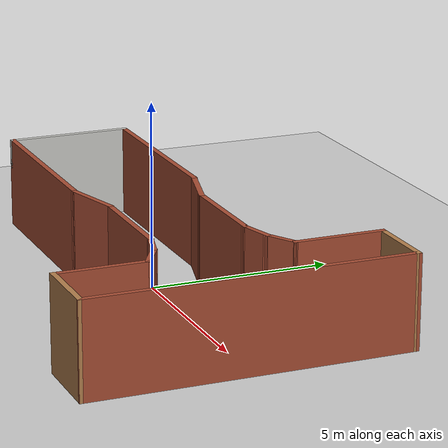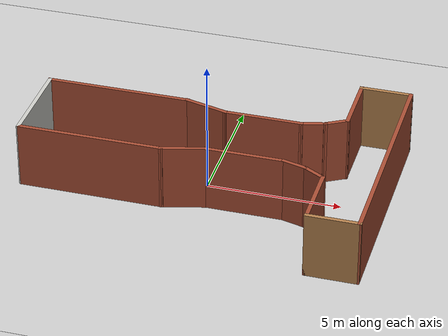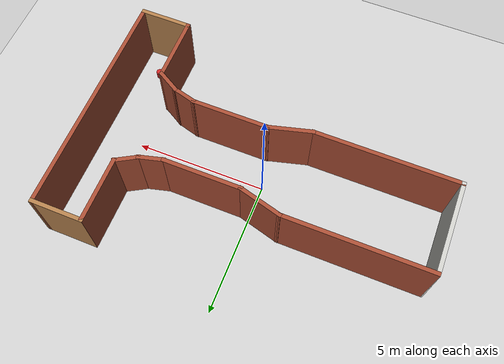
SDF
<?xml version="1.0" ?>
<sdf version="1.4">
  <world name="default">
    <include>
      <uri>model://ground_plane</uri>
    </include>
    <include>
      <uri>model://sun</uri>
    </include>

    <!-- Only require one ROS interface plugin per world, as any other plugin can connect a Gazebo
        topic to a ROS topic (or vise versa). -->
    <plugin name="ros_interface_plugin" filename="librotors_gazebo_ros_interface_plugin.so"></plugin>
    <!-- Rl Interface Plugin -->
    <plugin name="ros_rl_interface_plugin" filename="librl_gazebo_interface_plugin.so"></plugin>

    <spherical_coordinates>
      <surface_model>EARTH_WGS84</surface_model>
      <latitude_deg>47.3667</latitude_deg>
      <longitude_deg>8.5500</longitude_deg>
      <elevation>500.0</elevation>
      <heading_deg>0</heading_deg>
    </spherical_coordinates>
    <physics type='ode'>
      <ode>
        <solver>
          <type>quick</type>
          <iters>1000</iters>
          <sor>1.3</sor>
        </solver>
        <constraints>
          <cfm>0</cfm>
          <erp>0.2</erp>
          <contact_max_correcting_vel>100</contact_max_correcting_vel>
          <contact_surface_layer>0.001</contact_surface_layer>
        </constraints>
      </ode>
      <max_step_size>0.01</max_step_size>
      <real_time_factor>1</real_time_factor>
      <real_time_update_rate>100</real_time_update_rate>
      <gravity>0 0 -9.8</gravity>
    </physics>

    <include>
      <pose>5.7 -3.2 0 0 0 0</pose>
      <uri>model://cylinder</uri>
    </include>

    <include>
      <pose>0 0 0 0 0 0</pose>
      <uri>model://maze_3</uri>
    </include>

  </world>
</sdf>

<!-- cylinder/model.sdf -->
<sdf version='1.5'>
  <model name='cylinder'>
    <link name='link'>
      <pose frame=''>0 0 0.15 0 -0 0</pose>
      <inertial>
        <mass>1</mass>
        <inertia>
          <ixx>0.145833</ixx>
          <ixy>0</ixy>
          <ixz>0</ixz>
          <iyy>0.145833</iyy>
          <iyz>0</iyz>
          <izz>0.125</izz>
        </inertia>
        <pose frame=''>0 0 0 0 -0 0</pose>
      </inertial>
      <self_collide>0</self_collide>
      <kinematic>0</kinematic>
      <gravity>1</gravity>
      <visual name='visual'>
        <geometry>
          <cylinder>
            <radius>0.125</radius>
            <length>0.3</length>
          </cylinder>
        </geometry>
        <material>
          <script>
            <name>Gazebo/Red</name>
            <uri>file://media/materials/scripts/gazebo.material</uri>
          </script>
          <ambient>1 0 0 1</ambient>
          <diffuse>1 0 0 1</diffuse>
          <specular>0.01 0 0 1</specular>
          <emissive>0 0 0 1</emissive>
          <shader type='vertex'>
            <normal_map>__default__</normal_map>
          </shader>
        </material>
        <pose frame=''>0 0 0 0 -0 0</pose>
        <cast_shadows>1</cast_shadows>
        <transparency>0.0</transparency>
      </visual>
    </link>
    <static>1</static>
    <allow_auto_disable>1</allow_auto_disable>
  </model>
</sdf>

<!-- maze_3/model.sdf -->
<sdf version='1.5'>
  <model name='maze_3'>
    <pose frame=''>3.84212 -3.565 0 0 -0 0</pose>
    <link name='Wall_0'>
      <collision name='Wall_0_Collision'>
        <geometry>
          <box>
            <size>3.5 0.15 2.5</size>
          </box>
        </geometry>
        <pose frame=''>0 0 1.25 0 -0 0</pose>
      </collision>
      <visual name='Wall_0_Visual'>
        <pose frame=''>0 0 1.25 0 -0 0</pose>
        <geometry>
          <box>
            <size>3.5 0.15 2.5</size>
          </box>
        </geometry>
        <material>
          <script>
            <uri>file://media/materials/scripts/gazebo.material</uri>
            <name>Gazebo/CeilingTiled</name>
          </script>
          <ambient>1 1 1 1</ambient>
        </material>
      </visual>
      <pose frame=''>-6.58212 0 0 0 0 -1.5708</pose>
    </link>
    <link name='Wall_1'>
      <collision name='Wall_1_Collision'>
        <geometry>
          <box>
            <size>5.5 0.15 2.5</size>
          </box>
        </geometry>
        <pose frame=''>0 0 1.25 0 -0 0</pose>
      </collision>
      <visual name='Wall_1_Visual'>
        <pose frame=''>0 0 1.25 0 -0 0</pose>
        <geometry>
          <box>
            <size>5.5 0.15 2.5</size>
          </box>
        </geometry>
        <material>
          <script>
            <uri>file://media/materials/scripts/gazebo.material</uri>
            <name>Gazebo/Bricks</name>
          </script>
          <ambient>1 1 1 1</ambient>
        </material>
      </visual>
      <pose frame=''>-3.90712 -1.675 0 0 -0 0</pose>
    </link>
    <link name='Wall_11'>
      <collision name='Wall_11_Collision'>
        <geometry>
          <box>
            <size>1 0.15 2.5</size>
          </box>
        </geometry>
        <pose frame=''>0 0 1.25 0 -0 0</pose>
      </collision>
      <visual name='Wall_11_Visual'>
        <pose frame=''>0 0 1.25 0 -0 0</pose>
        <geometry>
          <box>
            <size>1 0.15 2.5</size>
          </box>
        </geometry>
        <material>
          <script>
            <uri>file://media/materials/scripts/gazebo.material</uri>
            <name>Gazebo/Bricks</name>
          </script>
          <ambient>1 1 1 1</ambient>
        </material>
      </visual>
      <pose frame=''>3.57388 -1.37089 0 0 0 -0.261799</pose>
    </link>
    <link name='Wall_12'>
      <collision name='Wall_12_Collision'>
        <geometry>
          <box>
            <size>1 0.15 2.5</size>
          </box>
        </geometry>
        <pose frame=''>0 0 1.25 0 -0 0</pose>
      </collision>
      <visual name='Wall_12_Visual'>
        <pose frame=''>0 0 1.25 0 -0 0</pose>
        <geometry>
          <box>
            <size>1 0.15 2.5</size>
          </box>
        </geometry>
        <material>
          <script>
            <uri>file://media/materials/scripts/gazebo.material</uri>
            <name>Gazebo/Bricks</name>
          </script>
          <ambient>1 1 1 1</ambient>
        </material>
      </visual>
      <pose frame=''>4.35246 -1.69339 0 0 0 -0.523599</pose>
    </link>
    <link name='Wall_13'>
      <collision name='Wall_13_Collision'>
        <geometry>
          <box>
            <size>2.5 0.15 2.5</size>
          </box>
        </geometry>
        <pose frame=''>0 0 1.25 0 -0 0</pose>
      </collision>
      <visual name='Wall_13_Visual'>
        <pose frame=''>0 0 1.25 0 -0 0</pose>
        <geometry>
          <box>
            <size>2.5 0.15 2.5</size>
          </box>
        </geometry>
        <material>
          <script>
            <uri>file://media/materials/scripts/gazebo.material</uri>
            <name>Gazebo/Bricks</name>
          </script>
          <ambient>1 1 1 1</ambient>
        </material>
      </visual>
      <pose frame=''>4.72052 -3.08089 0 0 0 -1.5708</pose>
    </link>
    <link name='Wall_14'>
      <collision name='Wall_14_Collision'>
        <geometry>
          <box>
            <size>2 0.15 2.5</size>
          </box>
        </geometry>
        <pose frame=''>0 0 1.25 0 -0 0</pose>
      </collision>
      <visual name='Wall_14_Visual'>
        <pose frame=''>0 0 1.25 0 -0 0</pose>
        <geometry>
          <box>
            <size>2 0.15 2.5</size>
          </box>
        </geometry>
        <material>
          <script>
            <uri>file://media/materials/scripts/gazebo.material</uri>
            <name>Gazebo/Wood</name>
          </script>
          <ambient>1 1 1 1</ambient>
        </material>
      </visual>
      <pose frame=''>5.64552 -4.25589 0 0 -0 0</pose>
    </link>
    <link name='Wall_17'>
      <collision name='Wall_17_Collision'>
        <geometry>
          <box>
            <size>1.02224 0.15 2.5</size>
          </box>
        </geometry>
        <pose frame=''>0 0 1.25 0 -0 0</pose>
      </collision>
      <visual name='Wall_17_Visual'>
        <pose frame=''>0 0 1.25 0 -0 0</pose>
        <geometry>
          <box>
            <size>1.02224 0.15 2.5</size>
          </box>
        </geometry>
        <material>
          <script>
            <uri>file://media/materials/scripts/gazebo.material</uri>
            <name>Gazebo/Bricks</name>
          </script>
          <ambient>1 1 1 1</ambient>
        </material>
      </visual>
      <pose frame=''>3.58538 1.37089 0 0 -0 0.254975</pose>
    </link>
    <link name='Wall_18'>
      <collision name='Wall_18_Collision'>
        <geometry>
          <box>
            <size>1 0.15 2.5</size>
          </box>
        </geometry>
        <pose frame=''>0 0 1.25 0 -0 0</pose>
      </collision>
      <visual name='Wall_18_Visual'>
        <pose frame=''>0 0 1.25 0 -0 0</pose>
        <geometry>
          <box>
            <size>1 0.15 2.5</size>
          </box>
        </geometry>
        <material>
          <script>
            <uri>file://media/materials/scripts/gazebo.material</uri>
            <name>Gazebo/Bricks</name>
          </script>
          <ambient>1 1 1 1</ambient>
        </material>
      </visual>
      <pose frame=''>4.36396 1.69339 0 0 -0 0.523599</pose>
    </link>
    <link name='Wall_19'>
      <collision name='Wall_19_Collision'>
        <geometry>
          <box>
            <size>2.5 0.15 2.5</size>
          </box>
        </geometry>
        <pose frame=''>0 0 1.25 0 -0 0</pose>
      </collision>
      <visual name='Wall_19_Visual'>
        <pose frame=''>0 0 1.25 0 -0 0</pose>
        <geometry>
          <box>
            <size>2.5 0.15 2.5</size>
          </box>
        </geometry>
        <material>
          <script>
            <uri>file://media/materials/scripts/gazebo.material</uri>
            <name>Gazebo/Bricks</name>
          </script>
          <ambient>1 1 1 1</ambient>
        </material>
      </visual>
      <pose frame=''>4.73202 3.08089 0 0 -0 1.5708</pose>
    </link>
    <link name='Wall_2'>
      <collision name='Wall_2_Collision'>
        <geometry>
          <box>
            <size>1.75 0.15 2.5</size>
          </box>
        </geometry>
        <pose frame=''>0 0 1.25 0 -0 0</pose>
      </collision>
      <visual name='Wall_2_Visual'>
        <pose frame=''>0 0 1.25 0 -0 0</pose>
        <geometry>
          <box>
            <size>1.75 0.15 2.5</size>
          </box>
        </geometry>
        <material>
          <script>
            <uri>file://media/materials/scripts/gazebo.material</uri>
            <name>Gazebo/Bricks</name>
          </script>
          <ambient>1 1 1 1</ambient>
        </material>
      </visual>
      <pose frame=''>-0.45938 -1.46795 0 0 -0 0.261799</pose>
    </link>
    <link name='Wall_20'>
      <collision name='Wall_20_Collision'>
        <geometry>
          <box>
            <size>2 0.15 2.5</size>
          </box>
        </geometry>
        <pose frame=''>0 0 1.25 0 -0 0</pose>
      </collision>
      <visual name='Wall_20_Visual'>
        <pose frame=''>0 0 1.25 0 -0 0</pose>
        <geometry>
          <box>
            <size>2 0.15 2.5</size>
          </box>
        </geometry>
        <material>
          <script>
            <uri>file://media/materials/scripts/gazebo.material</uri>
            <name>Gazebo/Wood</name>
          </script>
          <ambient>1 1 1 1</ambient>
        </material>
      </visual>
      <pose frame=''>5.65702 4.25589 0 0 -0 0</pose>
    </link>
    <link name='Wall_29'>
      <collision name='Wall_29_Collision'>
        <geometry>
          <box>
            <size>8.66178 0.15 2.5</size>
          </box>
        </geometry>
        <pose frame=''>0 0 1.25 0 -0 0</pose>
      </collision>
      <visual name='Wall_29_Visual'>
        <pose frame=''>0 0 1.25 0 -0 0</pose>
        <geometry>
          <box>
            <size>8.66178 0.15 2.5</size>
          </box>
        </geometry>
        <material>
          <script>
            <uri>file://media/materials/scripts/gazebo.material</uri>
            <name>Gazebo/Bricks</name>
          </script>
          <ambient>1 1 1 1</ambient>
        </material>
      </visual>
      <pose frame=''>6.57627 0 0 0 -0 1.56944</pose>
    </link>
    <link name='Wall_4'>
      <collision name='Wall_4_Collision'>
        <geometry>
          <box>
            <size>5.5 0.15 2.5</size>
          </box>
        </geometry>
        <pose frame=''>0 0 1.25 0 -0 0</pose>
      </collision>
      <visual name='Wall_4_Visual'>
        <pose frame=''>0 0 1.25 0 -0 0</pose>
        <geometry>
          <box>
            <size>5.5 0.15 2.5</size>
          </box>
        </geometry>
        <material>
          <script>
            <uri>file://media/materials/scripts/gazebo.material</uri>
            <name>Gazebo/Bricks</name>
          </script>
          <ambient>1 1 1 1</ambient>
        </material>
      </visual>
      <pose frame=''>-3.90712 1.675 0 0 -0 0</pose>
    </link>
    <link name='Wall_5'>
      <collision name='Wall_5_Collision'>
        <geometry>
          <box>
            <size>1.75 0.15 2.5</size>
          </box>
        </geometry>
        <pose frame=''>0 0 1.25 0 -0 0</pose>
      </collision>
      <visual name='Wall_5_Visual'>
        <pose frame=''>0 0 1.25 0 -0 0</pose>
        <geometry>
          <box>
            <size>1.75 0.15 2.5</size>
          </box>
        </geometry>
        <material>
          <script>
            <uri>file://media/materials/scripts/gazebo.material</uri>
            <name>Gazebo/Bricks</name>
          </script>
          <ambient>1 1 1 1</ambient>
        </material>
      </visual>
      <pose frame=''>-0.45938 1.46795 0 0 0 -0.261799</pose>
    </link>
    <link name='Wall_6'>
      <collision name='Wall_6_Collision'>
        <geometry>
          <box>
            <size>3 0.15 2.5</size>
          </box>
        </geometry>
        <pose frame=''>0 0 1.25 0 -0 0</pose>
      </collision>
      <visual name='Wall_6_Visual'>
        <pose frame=''>0 0 1.25 0 -0 0</pose>
        <geometry>
          <box>
            <size>3 0.15 2.5</size>
          </box>
        </geometry>
        <material>
          <script>
            <uri>file://media/materials/scripts/gazebo.material</uri>
            <name>Gazebo/Bricks</name>
          </script>
          <ambient>1 1 1 1</ambient>
        </material>
      </visual>
      <pose frame=''>1.73836 1.26089 0 0 -0 0</pose>
    </link>
    <link name='Wall_8'>
      <collision name='Wall_8_Collision'>
        <geometry>
          <box>
            <size>3 0.15 2.5</size>
          </box>
        </geometry>
        <pose frame=''>0 0 1.25 0 -0 0</pose>
      </collision>
      <visual name='Wall_8_Visual'>
        <pose frame=''>0 0 1.25 0 -0 0</pose>
        <geometry>
          <box>
            <size>3 0.15 2.5</size>
          </box>
        </geometry>
        <material>
          <script>
            <uri>file://media/materials/scripts/gazebo.material</uri>
            <name>Gazebo/Bricks</name>
          </script>
          <ambient>1 1 1 1</ambient>
        </material>
      </visual>
      <pose frame=''>1.73836 -1.26089 0 0 -0 0</pose>
    </link>
    <static>1</static>
  </model>
</sdf>
